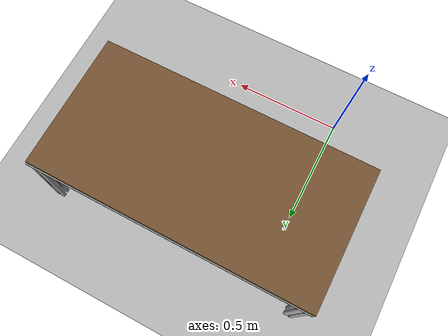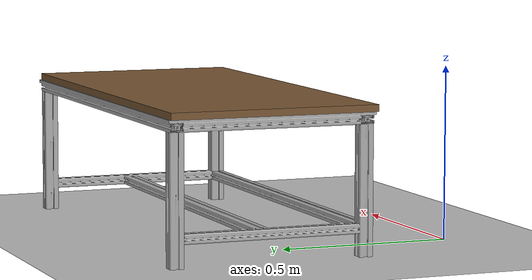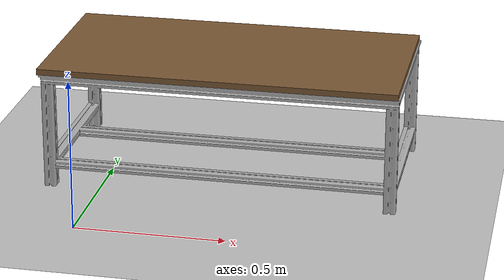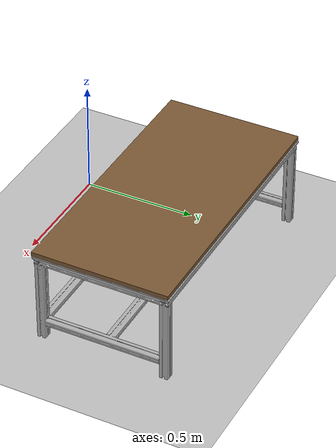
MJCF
<mujoco model="empty_floor">
  <compiler angle="radian"/>

  <option timestep="0.001" gravity="0 0 -9.81" integrator="implicitfast" impratio="10">
      <flag contact="enable" energy="enable" gravity="enable"/>
  </option>

  <visual>
    <rgba haze="0.15 0.25 0.35 1"/>
    <global azimuth="120" elevation="-20"/>
  </visual>

  <asset>
    <mesh name="table" file="../objects/table/table.STL" scale="1.0 1.0 0.66"/>

    <texture type="skybox" builtin="gradient" rgb1="0.68 0.68 0.68" rgb2="0.3 0.3 0.3" width="512" height="3072"/>
    <texture name="groundplane" type="2d" builtin="checker" mark="edge"  rgb1="0.68 0.68 0.68" rgb2="0.8 0.8 0.8"
      markrgb="0.68 0.68 0.68" width="300" height="300"/>
    <material name="groundplane" reflectance="0.2" shininess="0.0" specular="0.0" texrepeat="5 5" texture="groundplane" texuniform="true"/>

    <texture name="wood" type="2d" file="../textures/wood.png"/>
    <material name="wood" texture="wood" texrepeat="1 1" texuniform="true" rgba="0.68 0.68 0.68 1"/>
  </asset>

  <worldbody>
    <!-- Floor -->
    <geom condim="3" material="groundplane" name="floor" pos="0 0 0" size="3 3 .125" type="plane"/>
    <light diffuse=".8 .8 .8" dir="0 -.15 -1" directional="false" pos="1 1 8.0" specular="0.3 0.3 0.3" castshadow="false"/>
    <light diffuse=".8 .8 .8" dir="0 -.15 -1" directional="false" pos="-3. -3. 8.0" specular="0.3 0.3 0.3" castshadow="false"/>
    <!-- front view -->
    <camera mode="fixed" name="frontview" pos="1.6 0 1.45" quat="0.56 0.43 0.43 0.56"/>
    <!-- bird view -->
    <camera mode="fixed" name="birdview" pos="-0.2 0 3.0" quat="0.7071 0 0 0.7071"/>
    <!-- agent view -->
    <camera mode="fixed" name="agentview" pos="0.5 0 1.35" quat="0.653 0.271 0.271 0.653"/>
    <!-- side view -->
    <camera mode="fixed" name="sideview" pos="-0.05651774593317116 1.2761224129427358 1.4879572214102434" quat="0.009905065491771751 0.006877963156909582 0.5912228352893879 0.806418094001364" />

    <body name="table_00" pos="1.0 0.3 0.0" euler="0 0 0">
        <include file="objects/table/table.xml"/>
    </body>

    <body name="table_01" pos="1.0 0.9 0.0" euler="0 0 0">
        <include file="objects/table/dualTable.xml"/>
    </body>
  </worldbody>
</mujoco>

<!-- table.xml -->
<mujoco model="table">
  <default>
    <default class="visual">
      <geom group="1" type="mesh" contype="0" conaffinity="0"/>
    </default>
    <default class="collision">
      <geom group="0" type="mesh"/>
    </default>
  </default>
  <asset>
    <texture type="2d" name="zhuozi_white" file="zhuozi_white.png"/>
    <material name="Ml_Zuozi_01" texture="zhuozi_white" specular="0.5" shininess="0.5"/>
    <mesh name="table" file="table.obj"/>
    <mesh name="table_collision_0" file="table_collision_0.obj"/>
    <mesh name="table_collision_1" file="table_collision_1.obj"/>
    <mesh name="table_collision_2" file="table_collision_2.obj"/>
    <mesh name="table_collision_3" file="table_collision_3.obj"/>
    <mesh name="table_collision_4" file="table_collision_4.obj"/>
    <mesh name="table_collision_5" file="table_collision_5.obj"/>
    <mesh name="table_collision_6" file="table_collision_6.obj"/>
    <mesh name="table_collision_7" file="table_collision_7.obj"/>
    <mesh name="table_collision_8" file="table_collision_8.obj"/>
    <mesh name="table_collision_9" file="table_collision_9.obj"/>
    <mesh name="table_collision_10" file="table_collision_10.obj"/>
    <mesh name="table_collision_11" file="table_collision_11.obj"/>
    <mesh name="table_collision_12" file="table_collision_12.obj"/>
    <mesh name="table_collision_13" file="table_collision_13.obj"/>
    <mesh name="table_collision_14" file="table_collision_14.obj"/>
    <mesh name="table_collision_15" file="table_collision_15.obj"/>
    <mesh name="table_collision_16" file="table_collision_16.obj"/>
    <mesh name="table_collision_17" file="table_collision_17.obj"/>
    <mesh name="table_collision_18" file="table_collision_18.obj"/>
  </asset>
  <worldbody>
    <body>
      <body name="object">
        <geom material="Ml_Zuozi_01" mesh="table" class="visual"/>
        <geom type="box" size="0.45 0.275 0.223" pos="-0.02 0 0.202" class="collision"/>
      </body>
    </body>
  </worldbody>
</mujoco>

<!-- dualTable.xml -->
<mujoco model="empty_floor">

    <body name="table_1">
        <geom pos="-0.6 -0.3 0.411" contype="0" conaffinity="0" group="1" euler = "0 0 1.57" type="box" size="0.3 0.6 0.01" material="wood"/>
        <geom pos="-0.6 -0.3 0.411" conaffinity="1" condim="3" contype="0" group="4" euler = "0 0 1.57" type="box" size="0.3 0.6 0.01" />
        <geom type="mesh" contype="0" conaffinity="0" group="1" rgba="0.68 0.68 0.68 1" mesh="table" friction="0.95 0.9 0.9"/>
        <geom type="mesh" conaffinity="1" condim="3" contype="0" group="4" rgba="0.68 0.68 0.68 1" mesh="table" friction="0.95 0.9 0.9"/>
    </body>

</mujoco>
